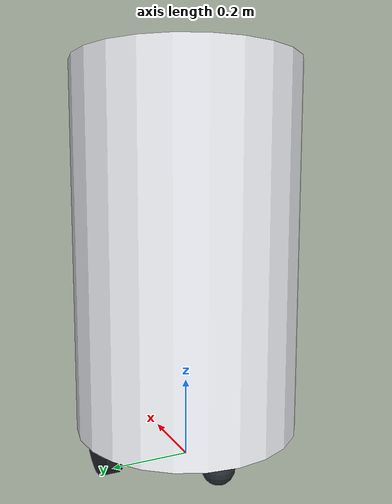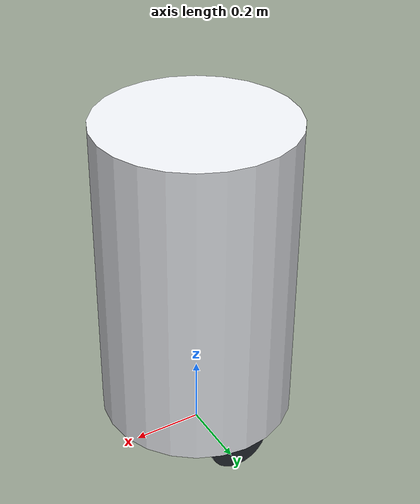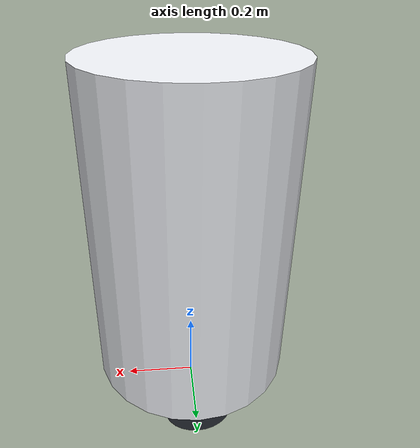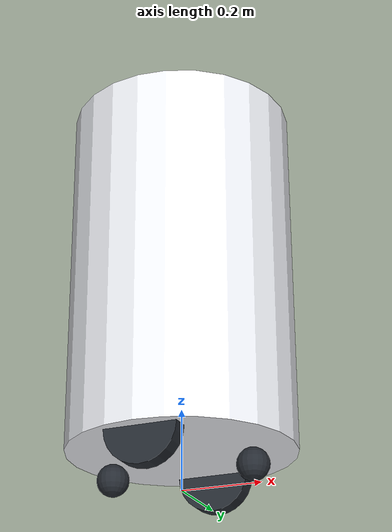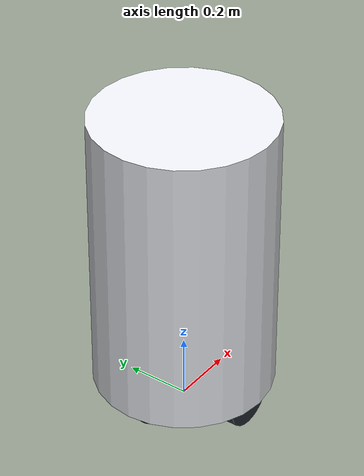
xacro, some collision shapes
<?xml version="1.0"?>
<robot name="cstam_waiter_robot" xmlns:xacro="http://www.ros.org/wiki/xacro">

  <!-- Configurable Scaling for BellaBot 3D Mesh -->
  <!-- 0.00762 scales CAD model (169.2cm) to real-life BellaBot 1.29m height and 0.65m width -->
  <xacro:property name="mesh_scale" value="0.00762 0.00762 0.00762"/>

  <!-- Materials for RViz & Simulation -->
  <material name="bellabot_white">
    <color rgba="0.94 0.95 0.97 1.0"/>
  </material>
  <material name="metallic_dark">
    <color rgba="0.15 0.17 0.20 1.0"/>
  </material>
  <material name="accent_cyan">
    <color rgba="0.0 0.75 0.85 1.0"/>
  </material>
  <material name="tray_mat">
    <color rgba="0.22 0.25 0.28 1.0"/>
  </material>
  <material name="screen_glass">
    <color rgba="0.05 0.08 0.12 1.0"/>
  </material>

  <!-- Base Footprint (Ground Projection) -->
  <link name="base_footprint"/>

  <joint name="base_footprint_joint" type="fixed">
    <parent link="base_footprint"/>
    <child link="base_link"/>
    <origin xyz="0 0 0.09" rpy="0 0 0"/>
  </joint>

  <!-- Base Chassis Link with BellaBot 3D Mesh -->
  <link name="base_link">
    <!-- BellaBot Assembled 3D Visual Mesh -->
    <visual>
      <origin xyz="0 0 -0.09" rpy="0 0 1.5707963"/>
      <geometry>
        <mesh filename="package://cstam_gazebo/models/robot/mesh/bellabot_v2_assembled.stl" scale="${mesh_scale}"/>
      </geometry>
      <material name="bellabot_white"/>
    </visual>

    <!-- Stable Physics Collision Cylinder -->
    <collision>
      <origin xyz="0 0 0.45" rpy="0 0 0"/>
      <geometry>
        <cylinder radius="0.28" length="0.90"/>
      </geometry>
    </collision>

    <inertial>
      <origin xyz="0 0 0.25" rpy="0 0 0"/>
      <mass value="25.0"/>
      <inertia ixx="0.55" ixy="0.0" ixz="0.0" iyy="0.55" iyz="0.0" izz="0.65"/>
    </inertial>
  </link>

  <!-- Left Drive Wheel -->
  <link name="left_wheel">
    <visual>
      <origin xyz="0 0 0" rpy="1.5707963 0 0"/>
      <geometry>
        <cylinder radius="0.09" length="0.045"/>
      </geometry>
      <material name="metallic_dark"/>
    </visual>
    <!-- Sphere collision: a single, well-defined contact point under the
         axle keeps wheel odometry consistent with the real motion -->
    <collision>
      <origin xyz="0 0 0" rpy="0 0 0"/>
      <geometry>
        <sphere radius="0.09"/>
      </geometry>
    </collision>
    <inertial>
      <mass value="1.5"/>
      <inertia ixx="0.0033" ixy="0" ixz="0" iyy="0.0033" iyz="0" izz="0.006"/>
    </inertial>
  </link>

  <joint name="left_wheel_joint" type="continuous">
    <parent link="base_link"/>
    <child link="left_wheel"/>
    <origin xyz="0 0.22 0" rpy="0 0 0"/>
    <axis xyz="0 1 0"/>
  </joint>

  <!-- Right Drive Wheel -->
  <link name="right_wheel">
    <visual>
      <origin xyz="0 0 0" rpy="1.5707963 0 0"/>
      <geometry>
        <cylinder radius="0.09" length="0.045"/>
      </geometry>
      <material name="metallic_dark"/>
    </visual>
    <!-- Sphere collision: a single, well-defined contact point under the
         axle keeps wheel odometry consistent with the real motion -->
    <collision>
      <origin xyz="0 0 0" rpy="0 0 0"/>
      <geometry>
        <sphere radius="0.09"/>
      </geometry>
    </collision>
    <inertial>
      <mass value="1.5"/>
      <inertia ixx="0.0033" ixy="0" ixz="0" iyy="0.0033" iyz="0" izz="0.006"/>
    </inertial>
  </link>

  <joint name="right_wheel_joint" type="continuous">
    <parent link="base_link"/>
    <child link="right_wheel"/>
    <origin xyz="0 -0.22 0" rpy="0 0 0"/>
    <axis xyz="0 1 0"/>
  </joint>

  <!-- Front Passive Caster (5 mm above the floor so the drive wheels always
       carry the robot's weight and never lose traction) -->
  <link name="caster_front">
    <visual>
      <geometry><sphere radius="0.040"/></geometry>
      <material name="metallic_dark"/>
    </visual>
    <collision>
      <geometry><sphere radius="0.040"/></geometry>
    </collision>
    <inertial>
      <mass value="0.5"/>
      <inertia ixx="0.0004" ixy="0" ixz="0" iyy="0.0004" iyz="0" izz="0.0004"/>
    </inertial>
  </link>

  <joint name="caster_front_joint" type="fixed">
    <parent link="base_link"/>
    <child link="caster_front"/>
    <origin xyz="0.18 0 -0.045" rpy="0 0 0"/>
  </joint>

  <!-- Rear Passive Caster -->
  <link name="caster_rear">
    <visual>
      <geometry><sphere radius="0.040"/></geometry>
      <material name="metallic_dark"/>
    </visual>
    <collision>
      <geometry><sphere radius="0.040"/></geometry>
    </collision>
    <inertial>
      <mass value="0.5"/>
      <inertia ixx="0.0004" ixy="0" ixz="0" iyy="0.0004" iyz="0" izz="0.0004"/>
    </inertial>
  </link>

  <joint name="caster_rear_joint" type="fixed">
    <parent link="base_link"/>
    <child link="caster_rear"/>
    <origin xyz="-0.18 0 -0.045" rpy="0 0 0"/>
  </joint>

  <!-- 360-degree LiDAR Sensor Frame (Mounted on front bumper) -->
  <link name="laser_frame">
    <visual>
      <origin xyz="0 0 0" rpy="0 0 0"/>
      <geometry>
        <cylinder radius="0.04" length="0.03"/>
      </geometry>
      <material name="accent_cyan"/>
    </visual>
    <collision>
      <geometry>
        <cylinder radius="0.04" length="0.03"/>
      </geometry>
    </collision>
    <inertial>
      <mass value="0.2"/>
      <inertia ixx="0.0001" ixy="0" ixz="0" iyy="0.0001" iyz="0" izz="0.0002"/>
    </inertial>
  </link>

  <joint name="laser_joint" type="fixed">
    <parent link="base_link"/>
    <child link="laser_frame"/>
    <origin xyz="0.22 0 0.10" rpy="0 0 0"/>
  </joint>

  <!-- BellaBot Serving Tray Frames (for TF / Task Monitoring) -->
  <link name="shelf_lower"/>
  <joint name="shelf_lower_joint" type="fixed">
    <parent link="base_link"/>
    <child link="shelf_lower"/>
    <origin xyz="0.02 0 0.32" rpy="0 0 0"/>
  </joint>

  <link name="shelf_middle"/>
  <joint name="shelf_middle_joint" type="fixed">
    <parent link="base_link"/>
    <child link="shelf_middle"/>
    <origin xyz="0.02 0 0.60" rpy="0 0 0"/>
  </joint>

  <link name="shelf_upper"/>
  <joint name="shelf_upper_joint" type="fixed">
    <parent link="base_link"/>
    <child link="shelf_upper"/>
    <origin xyz="0.02 0 0.88" rpy="0 0 0"/>
  </joint>

  <!-- BellaBot Head Console Frame -->
  <link name="head_console"/>
  <joint name="head_console_joint" type="fixed">
    <parent link="base_link"/>
    <child link="head_console"/>
    <origin xyz="0.05 0 1.15" rpy="0 0.35 0"/>
  </joint>

  <!-- Contact properties: frictionless casters (they must slide, otherwise
       they drag the robot and wheel odometry drifts), high-grip drive wheels -->
  <gazebo reference="caster_front">
    <mu1>0.0</mu1>
    <mu2>0.0</mu2>
  </gazebo>
  <gazebo reference="caster_rear">
    <mu1>0.0</mu1>
    <mu2>0.0</mu2>
  </gazebo>
  <gazebo reference="left_wheel">
    <mu1>1.0</mu1>
    <mu2>1.0</mu2>
    <kp>1000000.0</kp>
    <kd>100.0</kd>
  </gazebo>
  <gazebo reference="right_wheel">
    <mu1>1.0</mu1>
    <mu2>1.0</mu2>
    <kp>1000000.0</kp>
    <kd>100.0</kd>
  </gazebo>

  <!-- Gazebo Sim Differential Drive Plugin -->
  <gazebo>
    <plugin filename="gz-sim-diff-drive-system" name="gz::sim::systems::DiffDrive">
      <left_joint>left_wheel_joint</left_joint>
      <right_joint>right_wheel_joint</right_joint>
      <wheel_separation>0.44</wheel_separation>
      <wheel_radius>0.09</wheel_radius>
      <max_linear_acceleration>1.2</max_linear_acceleration>
      <max_angular_acceleration>2.5</max_angular_acceleration>
      <topic>cmd_vel</topic>
      <odom_topic>odom</odom_topic>
      <frame_id>odom</frame_id>
      <child_frame_id>base_footprint</child_frame_id>
      <odom_publisher_frequency>30</odom_publisher_frequency>
      <tf_topic>/tf</tf_topic>
    </plugin>
    <plugin filename="gz-sim-joint-state-publisher-system" name="gz::sim::systems::JointStatePublisher">
      <topic>joint_states</topic>
      <joint_name>left_wheel_joint</joint_name>
      <joint_name>right_wheel_joint</joint_name>
    </plugin>
  </gazebo>

  <!-- Gazebo Sim LiDAR Sensor Plugin -->
  <gazebo reference="laser_frame">
    <sensor name="lidar" type="gpu_lidar">
      <pose>0 0 0 0 0 0</pose>
      <always_on>true</always_on>
      <visualize>true</visualize>
      <update_rate>10</update_rate>
      <topic>scan</topic>
      <ray>
        <scan>
          <horizontal>
            <samples>360</samples>
            <resolution>1.0</resolution>
            <min_angle>-3.14159</min_angle>
            <max_angle>3.14159</max_angle>
          </horizontal>
        </scan>
        <range>
          <min>0.10</min>
          <max>15.0</max>
          <resolution>0.015</resolution>
        </range>
        <noise>
          <type>gaussian</type>
          <mean>0.0</mean>
          <stddev>0.01</stddev>
        </noise>
      </ray>
      <gz_frame_id>laser_frame</gz_frame_id>
    </sensor>
  </gazebo>

  <!-- Material appearances in Gazebo Sim -->
  <gazebo reference="base_link">
    <visual>
      <material>
        <ambient>0.94 0.95 0.97 1.0</ambient>
        <diffuse>0.94 0.95 0.97 1.0</diffuse>
        <specular>0.4 0.4 0.4 1.0</specular>
      </material>
    </visual>
  </gazebo>

</robot>
